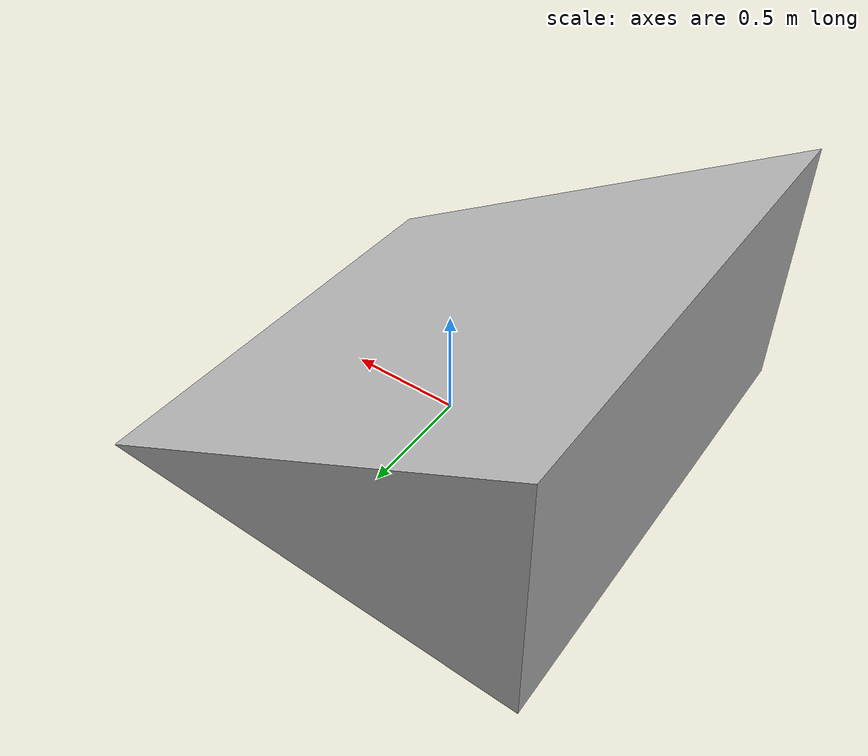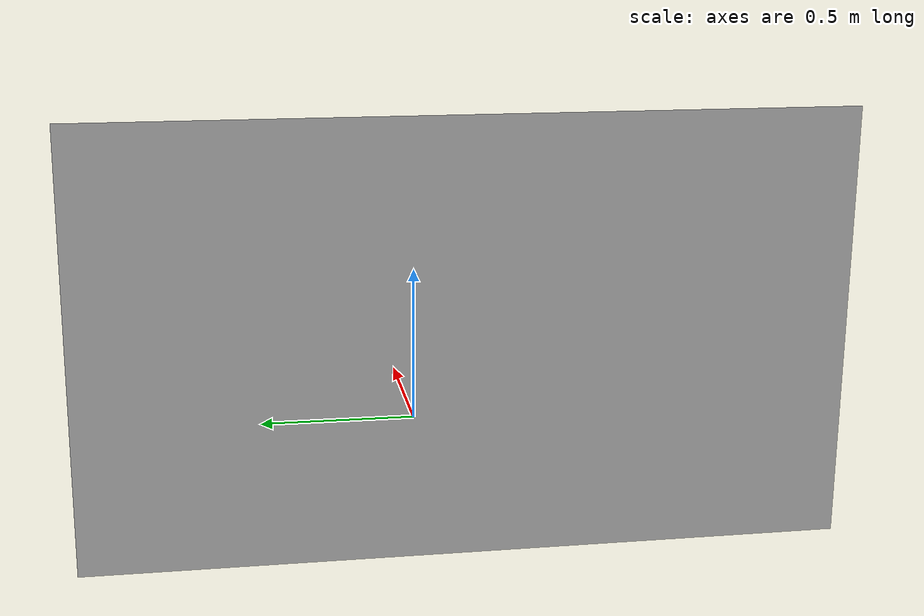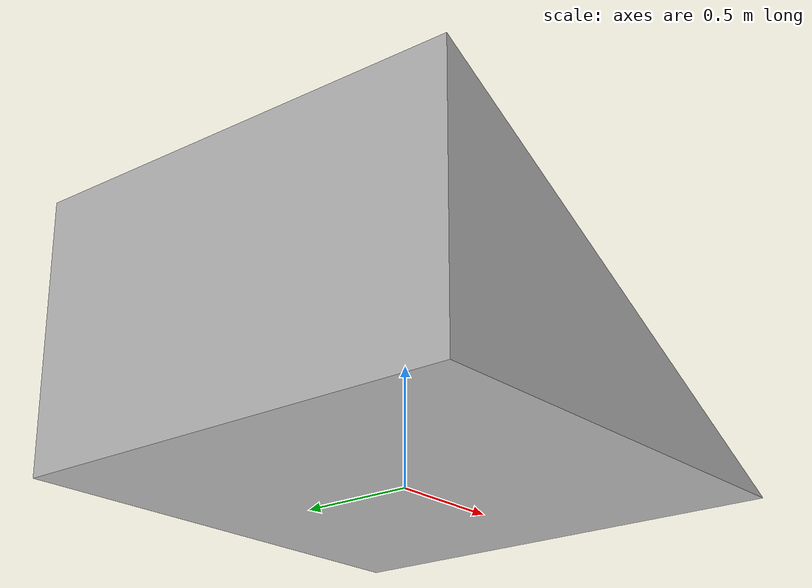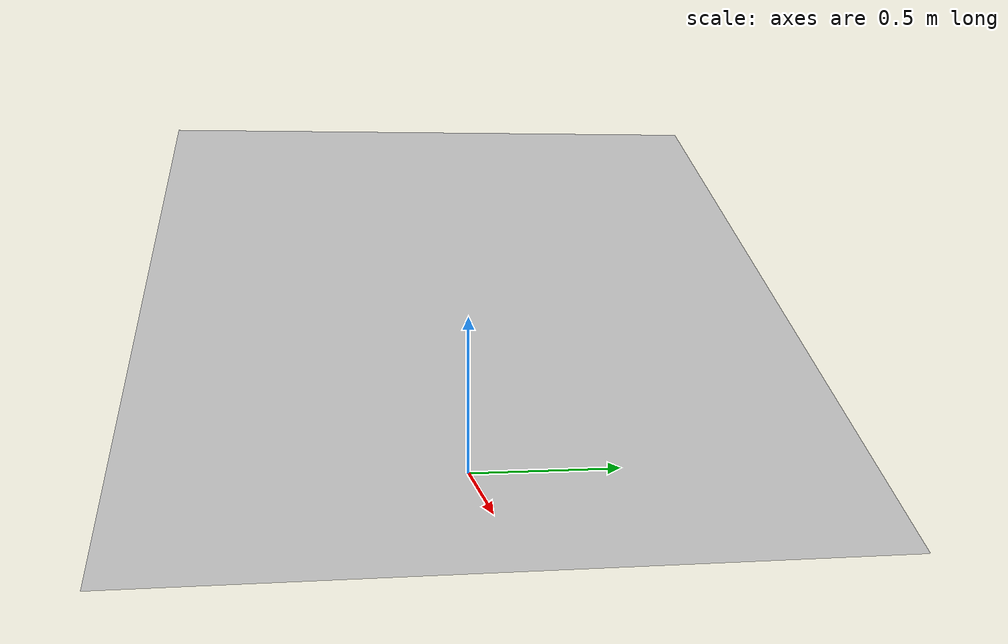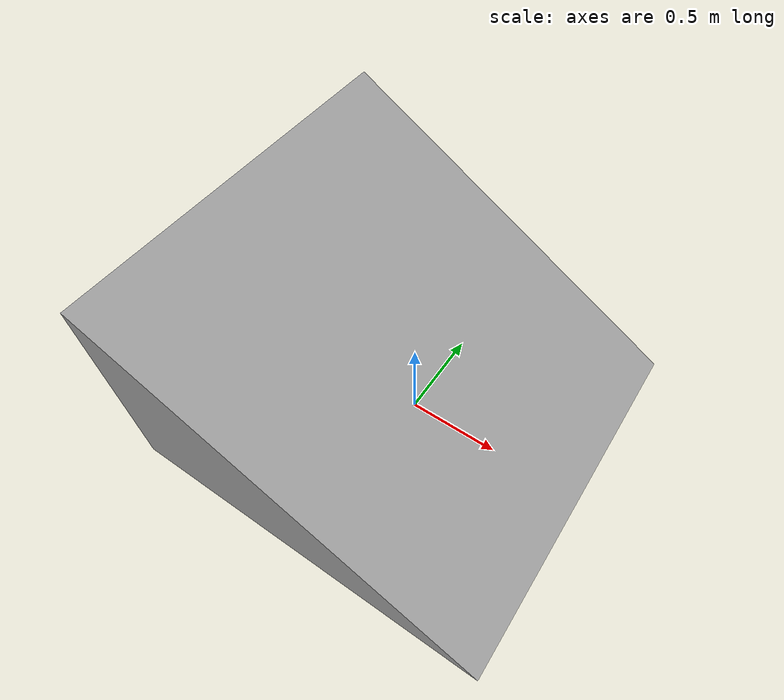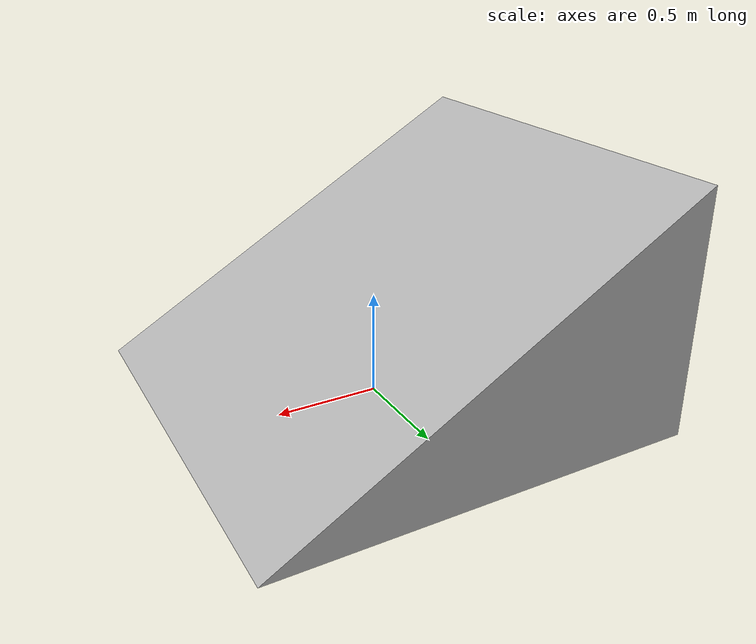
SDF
<?xml version="1.0" ?>
<sdf version="1.4">
	<model name="30_degree_ramp">
		<static>true</static>
		<link name="link">
			<pose>0 0 0 0 0 0</pose>
			<collision name="collision">
				<geometry>
					<mesh>
						<uri>model://ramp_45/mesh/ramp_45.dae</uri>
						<scale>1.0 1.0 0.5773</scale>
					</mesh>
				</geometry>
				<surface>
					<friction>
						<ode>
							<mu>10</mu>
							<mu2>10</mu2>
						</ode>
					</friction>
				</surface>
			</collision>
			<visual name="visual">
				<geometry>
					<mesh>
						<uri>model://ramp_45/mesh/ramp_45.dae</uri>
						<scale>1.0 1.0 0.5773</scale>
					</mesh>
				</geometry>
			</visual>
		</link>
	</model>
</sdf>
